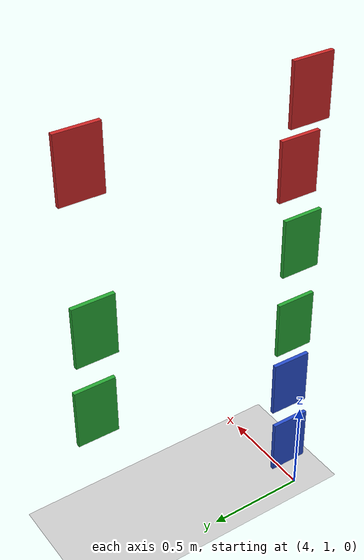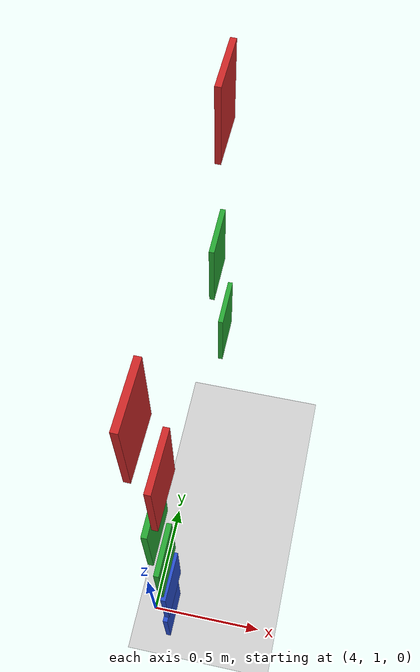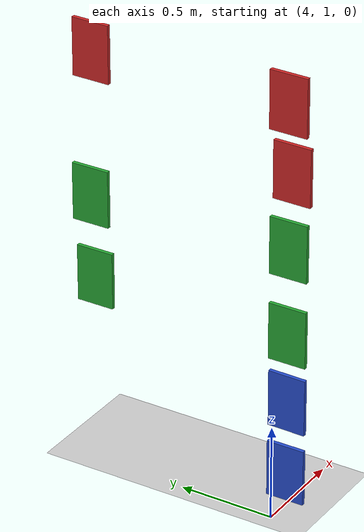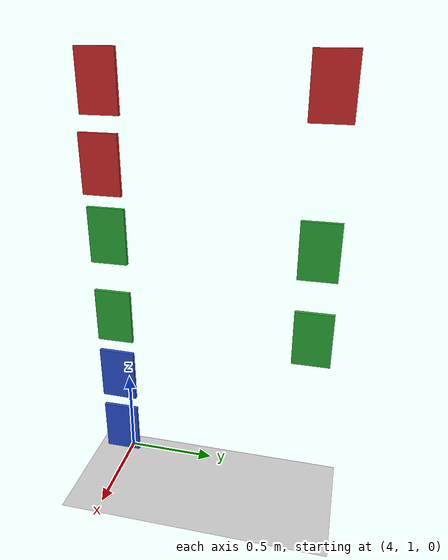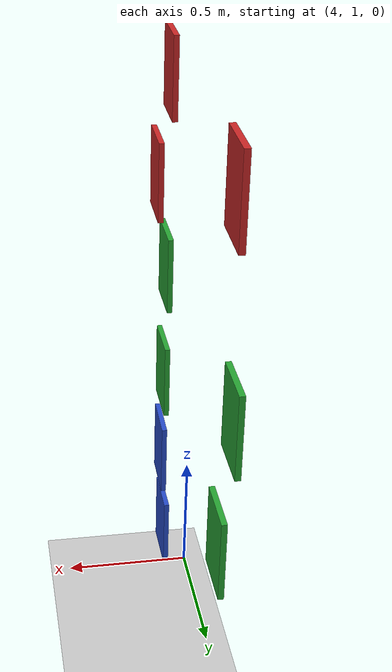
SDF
<sdf version="1.6">
 <world name="default">
  <model name="ground_plane">
   <static>1</static>
   <link name="link">
    <collision name="collision">
     <geometry><plane><normal>0 0 1</normal><size>100 100</size></plane></geometry>
     <surface><friction><ode><mu>100</mu><mu2>50</mu2></ode></friction></surface>
    </collision>
    <visual name="visual">
     <cast_shadows>0</cast_shadows>
     <geometry><plane><normal>0 0 1</normal><size>100 100</size></plane></geometry>
     <material>
      <script><uri>file://media/materials/scripts/gazebo.material</uri><name>Gazebo/Grey</name></script>
     </material>
    </visual>
   </link>
  </model>
  <model name="bluecube_0_clone_clone_9_clone_11_clone_clone_3">
   <static>1</static>
   <link name="link">
    <pose>0 0 0.21 0 -0 0</pose>
    <collision name="collision"><geometry><box><size>0.2 0.02 0.3</size></box></geometry></collision>
    <visual name="visual">
     <geometry><box><size>0.2 0.02 0.3</size></box></geometry>
     <material>
      <script><uri>file://media/materials/scripts/gazebo.material</uri><name>Gazebo/Blue</name></script>
     </material>
    </visual>
   </link>
   <pose>4.09677 0.978262 0 0 -0 1.57146</pose>
  </model>
  <model name="bluecube_0_clone_clone_10_clone_clone_21_clone_clone_4">
   <static>1</static>
   <link name="link">
    <pose>0 0 0.21 0 -0 0</pose>
    <collision name="collision"><geometry><box><size>0.2 0.02 0.3</size></box></geometry></collision>
    <visual name="visual">
     <geometry><box><size>0.2 0.02 0.3</size></box></geometry>
     <material>
      <script><uri>file://media/materials/scripts/gazebo.material</uri><name>Gazebo/Blue</name></script>
     </material>
    </visual>
   </link>
   <pose>4.11089 0.983593 0.38097 0 -0 1.5507</pose>
  </model>
  <model name="greencube_clone_clone_22_clone_clone_3">
   <static>1</static>
   <link name="link">
    <pose>0 0 0.21 0 -0 0</pose>
    <collision name="collision"><geometry><box><size>0.2 0.02 0.3</size></box></geometry></collision>
    <visual name="visual">
     <geometry><box><size>0.2 0.02 0.3</size></box></geometry>
     <material>
      <script><uri>file://media/materials/scripts/gazebo.material</uri><name>Gazebo/Green</name></script>
     </material>
    </visual>
   </link>
   <pose>4.11127 2.06004 0.751098 0 -0 1.56837</pose>
  </model>
  <model name="greencube_clone_clone_22_clone_clone_4">
   <static>1</static>
   <link name="link">
    <pose>0 0 0.21 0 -0 0</pose>
    <collision name="collision"><geometry><box><size>0.2 0.02 0.3</size></box></geometry></collision>
    <visual name="visual">
     <geometry><box><size>0.2 0.02 0.3</size></box></geometry>
     <material>
      <script><uri>file://media/materials/scripts/gazebo.material</uri><name>Gazebo/Green</name></script>
     </material>
    </visual>
   </link>
   <pose>4.1067 0.983175 0.751098 0 -0 1.56837</pose>
  </model>
  <model name="greencube_clone_clone_22_clone_clone_10_clone_clone_clone_15">
   <static>1</static>
   <link name="link">
    <pose>0 0 0.21 0 -0 0</pose>
    <collision name="collision"><geometry><box><size>0.2 0.02 0.3</size></box></geometry></collision>
    <visual name="visual">
     <geometry><box><size>0.2 0.02 0.3</size></box></geometry>
     <material>
      <script><uri>file://media/materials/scripts/gazebo.material</uri><name>Gazebo/Green</name></script>
     </material>
    </visual>
   </link>
   <pose>4.0773 2.05603 1.21098 0 -0 1.56837</pose>
  </model>
  <model name="greencube_clone_clone_22_clone_clone_10_clone_clone_clone_16">
   <static>1</static>
   <link name="link">
    <pose>0 0 0.21 0 -0 0</pose>
    <collision name="collision"><geometry><box><size>0.2 0.02 0.3</size></box></geometry></collision>
    <visual name="visual">
     <geometry><box><size>0.2 0.02 0.3</size></box></geometry>
     <material>
      <script><uri>file://media/materials/scripts/gazebo.material</uri><name>Gazebo/Green</name></script>
     </material>
    </visual>
   </link>
   <pose>4.10131 0.979456 1.21098 0 -0 1.56837</pose>
  </model>
  <model name="redcube_clone_clone_22_clone_clone_16">
   <static>1</static>
   <link name="link">
    <pose>0 0 0.21 0 -0 0</pose>
    <collision name="collision"><geometry><box><size>0.2 0.02 0.3</size></box></geometry></collision>
    <visual name="visual">
     <geometry><box><size>0.2 0.02 0.3</size></box></geometry>
     <material>
      <script><uri>file://media/materials/scripts/gazebo.material</uri><name>Gazebo/Red</name></script>
     </material>
    </visual>
   </link>
   <pose>4.14088 0.987635 1.58534 0 -0 1.55372</pose>
  </model>
  <model name="redcube_clone_clone_22_clone_clone_22_clone_clone_1">
   <static>1</static>
   <link name="link">
    <pose>0 0 0.21 0 -0 0</pose>
    <collision name="collision"><geometry><box><size>0.2 0.02 0.3</size></box></geometry></collision>
    <visual name="visual">
     <geometry><box><size>0.2 0.02 0.3</size></box></geometry>
     <material>
      <script><uri>file://media/materials/scripts/gazebo.material</uri><name>Gazebo/Red</name></script>
     </material>
    </visual>
   </link>
   <pose>4.09582 0.984418 1.95914 0 -0 1.55372</pose>
  </model>
  <model name="redcube_clone_clone_22_clone_clone_22_clone_clone_6">
   <static>1</static>
   <link name="link">
    <pose>0 0 0.21 0 -0 0</pose>
    <collision name="collision"><geometry><box><size>0.2 0.02 0.3</size></box></geometry></collision>
    <visual name="visual">
     <geometry><box><size>0.2 0.02 0.3</size></box></geometry>
     <material>
      <script><uri>file://media/materials/scripts/gazebo.material</uri><name>Gazebo/Red</name></script>
     </material>
    </visual>
   </link>
   <pose>4.10085 2.05677 1.95914 0 -0 1.55372</pose>
  </model>
 </world>
</sdf>
